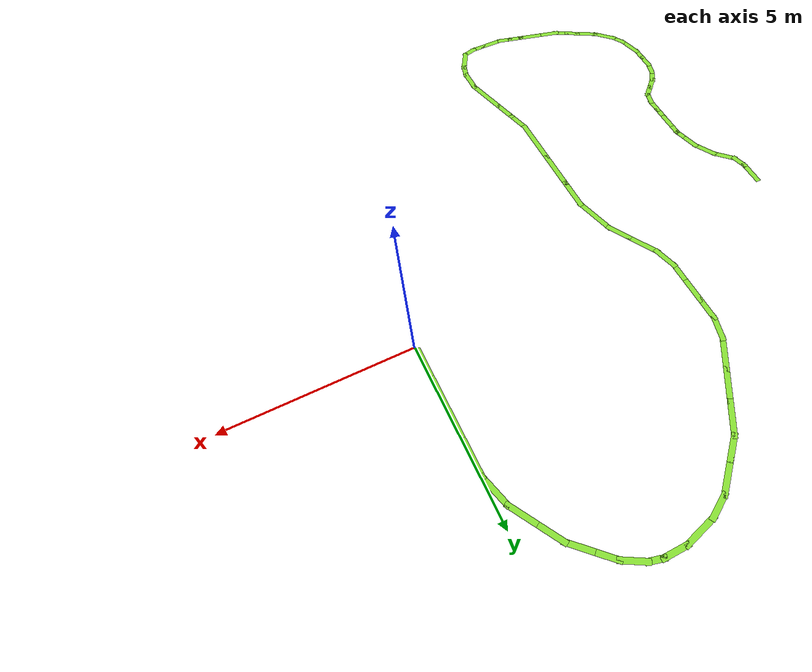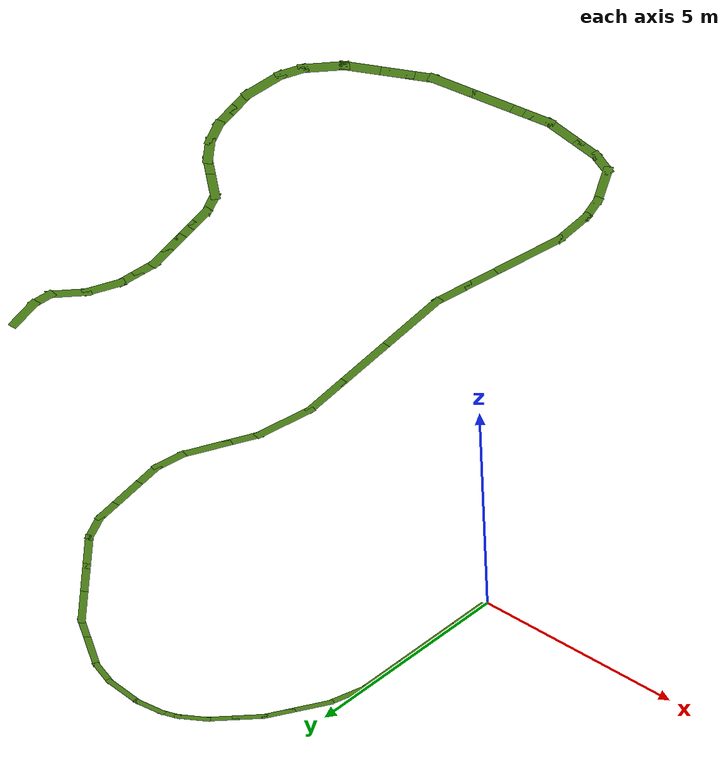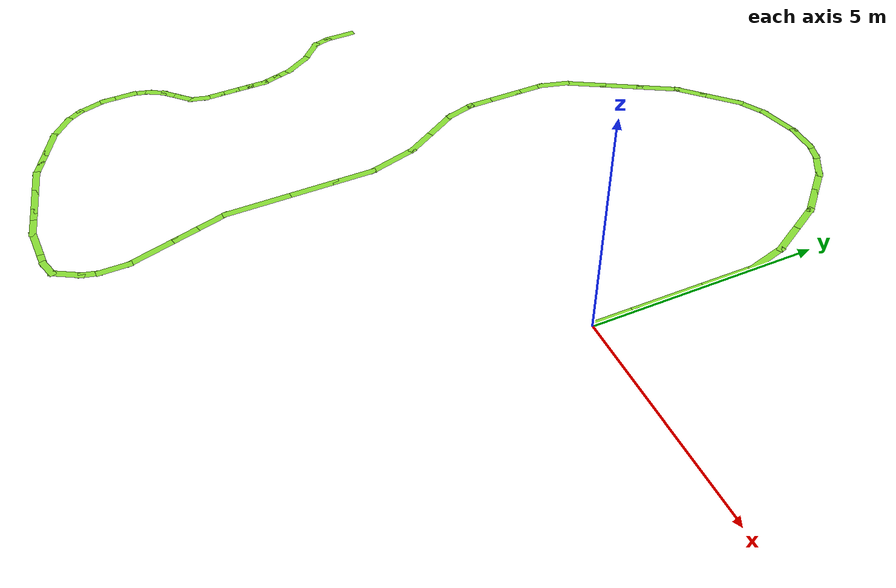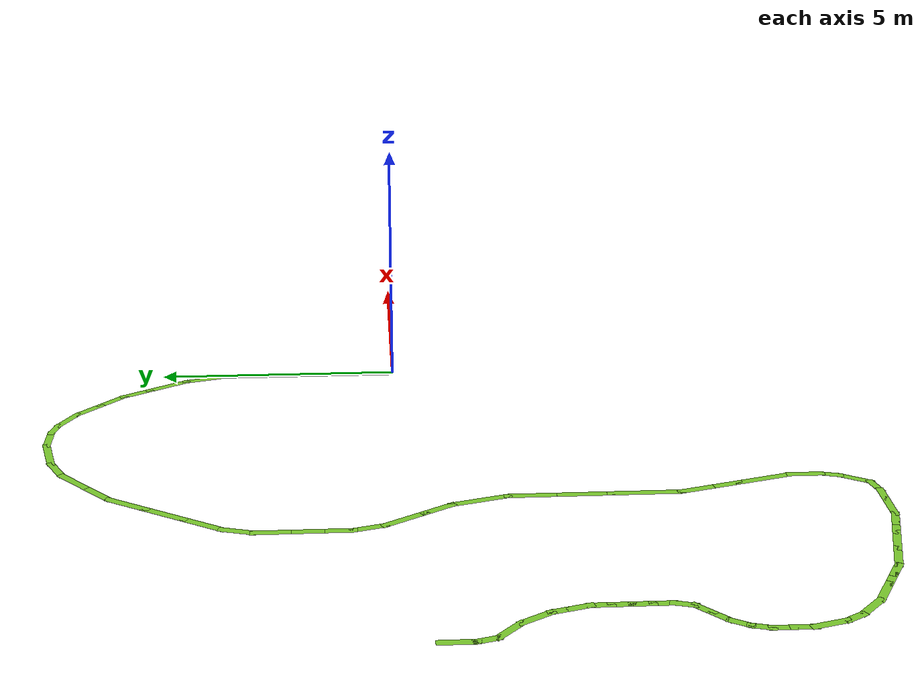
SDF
<?xml version='1.0'?>
<sdf version='1.6'>
  <model name='path_diamond'>
    <pose frame=''>-5.45527 -1.05979 0 0 -0 0</pose>
    <link name='Wall_11'>
      <collision name='Wall_11_Collision'>
        <geometry>
          <box>
            <size>0.75 0.15 0.0</size>
          </box>
        </geometry>
        <pose frame=''>0 0 0 0 -0 0</pose>
      </collision>
      <visual name='Wall_11_Visual'>
        <pose frame=''>0 0 0 0 -0 0</pose>
        <geometry>
          <box>
            <size>0.75 0.15 0.0</size>
          </box>
        </geometry>
        <material>
          <script>
            <uri>file://media/materials/scripts/gazebo.material</uri>
            <name>Gazebo/Grey</name>
          </script>
          <ambient>0.541176 0.886275 0.203922 1</ambient>
        </material>
        <meta>
          <layer>0</layer>
        </meta>
      </visual>
      <pose frame=''>4.61819 6.55155 0 0 -0 2.0944</pose>
    </link>
    <link name='Wall_12'>
      <collision name='Wall_12_Collision'>
        <geometry>
          <box>
            <size>0.75 0.15 0.0</size>
          </box>
        </geometry>
        <pose frame=''>0 0 0 0 -0 0</pose>
      </collision>
      <visual name='Wall_12_Visual'>
        <pose frame=''>0 0 0 0 -0 0</pose>
        <geometry>
          <box>
            <size>0.75 0.15 0.0</size>
          </box>
        </geometry>
        <material>
          <script>
            <uri>file://media/materials/scripts/gazebo.material</uri>
            <name>Gazebo/Grey</name>
          </script>
          <ambient>0.541176 0.886275 0.203922 1</ambient>
        </material>
        <meta>
          <layer>0</layer>
        </meta>
      </visual>
      <pose frame=''>4.25606 7.02349 0 0 -0 2.35619</pose>
    </link>
    <link name='Wall_17'>
      <collision name='Wall_17_Collision'>
        <geometry>
          <box>
            <size>0.75 0.15 0.0</size>
          </box>
        </geometry>
        <pose frame=''>0 0 0 0 -0 0</pose>
      </collision>
      <visual name='Wall_17_Visual'>
        <pose frame=''>0 0 0 0 -0 0</pose>
        <geometry>
          <box>
            <size>0.75 0.15 0.0</size>
          </box>
        </geometry>
        <material>
          <script>
            <uri>file://media/materials/scripts/gazebo.material</uri>
            <name>Gazebo/Grey</name>
          </script>
          <ambient>0.541176 0.886275 0.203922 1</ambient>
        </material>
        <meta>
          <layer>0</layer>
        </meta>
      </visual>
      <pose frame=''>3.83179 7.44775 0 0 -0 2.35619</pose>
    </link>
    <link name='Wall_18'>
      <collision name='Wall_18_Collision'>
        <geometry>
          <box>
            <size>0.75 0.15 0.0</size>
          </box>
        </geometry>
        <pose frame=''>0 0 0 0 -0 0</pose>
      </collision>
      <visual name='Wall_18_Visual'>
        <pose frame=''>0 0 0 0 -0 0</pose>
        <geometry>
          <box>
            <size>0.75 0.15 0.0</size>
          </box>
        </geometry>
        <material>
          <script>
            <uri>file://media/materials/scripts/gazebo.material</uri>
            <name>Gazebo/Grey</name>
          </script>
          <ambient>0.541176 0.886275 0.203922 1</ambient>
        </material>
        <meta>
          <layer>0</layer>
        </meta>
      </visual>
      <pose frame=''>3.35985 7.80988 0 0 -0 2.61799</pose>
    </link>
    <link name='Wall_19'>
      <collision name='Wall_19_Collision'>
        <geometry>
          <box>
            <size>0.5 0.15 0.0</size>
          </box>
        </geometry>
        <pose frame=''>0 0 0 0 -0 0</pose>
      </collision>
      <visual name='Wall_19_Visual'>
        <pose frame=''>0 0 0 0 -0 0</pose>
        <geometry>
          <box>
            <size>0.5 0.15 0.0</size>
          </box>
        </geometry>
        <material>
          <script>
            <uri>file://media/materials/scripts/gazebo.material</uri>
            <name>Gazebo/Grey</name>
          </script>
          <ambient>0.541176 0.886275 0.203922 1</ambient>
        </material>
        <meta>
          <layer>0</layer>
        </meta>
      </visual>
      <pose frame=''>2.93101 8.00517 0 0 -0 2.87979</pose>
    </link>
    <link name='Wall_20'>
      <collision name='Wall_20_Collision'>
        <geometry>
          <box>
            <size>0.75 0.15 0.0</size>
          </box>
        </geometry>
        <pose frame=''>0 0 0 0 -0 0</pose>
      </collision>
      <visual name='Wall_20_Visual'>
        <pose frame=''>0 0 0 0 -0 0</pose>
        <geometry>
          <box>
            <size>0.75 0.15 0.0</size>
          </box>
        </geometry>
        <material>
          <script>
            <uri>file://media/materials/scripts/gazebo.material</uri>
            <name>Gazebo/Grey</name>
          </script>
          <ambient>0.541176 0.886275 0.203922 1</ambient>
        </material>
        <meta>
          <layer>0</layer>
        </meta>
      </visual>
      <pose frame=''>2.46197 8.05047 0 0 -0 3.14159</pose>
    </link>
    <link name='Wall_21'>
      <collision name='Wall_21_Collision'>
        <geometry>
          <box>
            <size>1 0.15 0.0</size>
          </box>
        </geometry>
        <pose frame=''>0 0 0 0 -0 0</pose>
      </collision>
      <visual name='Wall_21_Visual'>
        <pose frame=''>0 0 0 0 -0 0</pose>
        <geometry>
          <box>
            <size>1 0.15 0.0</size>
          </box>
        </geometry>
        <material>
          <script>
            <uri>file://media/materials/scripts/gazebo.material</uri>
            <name>Gazebo/Grey</name>
          </script>
          <ambient>0.541176 0.886275 0.203922 1</ambient>
        </material>
        <meta>
          <layer>0</layer>
        </meta>
      </visual>
      <pose frame=''>1.75145 7.94047 0 0 -0 -2.87979</pose>
    </link>
    <link name='Wall_22'>
      <collision name='Wall_22_Collision'>
        <geometry>
          <box>
            <size>0.75 0.15 0.0</size>
          </box>
        </geometry>
        <pose frame=''>0 0 0 0 -0 0</pose>
      </collision>
      <visual name='Wall_22_Visual'>
        <pose frame=''>0 0 0 0 -0 0</pose>
        <geometry>
          <box>
            <size>0.75 0.15 0.0</size>
          </box>
        </geometry>
        <material>
          <script>
            <uri>file://media/materials/scripts/gazebo.material</uri>
            <name>Gazebo/Grey</name>
          </script>
          <ambient>0.541176 0.886275 0.203922 1</ambient>
        </material>
        <meta>
          <layer>0</layer>
        </meta>
      </visual>
      <pose frame=''>1.08113 7.68047 0 0 -0 -2.61799</pose>
    </link>
    <link name='Wall_25'>
      <collision name='Wall_25_Collision'>
        <geometry>
          <box>
            <size>1 0.15 0.0</size>
          </box>
        </geometry>
        <pose frame=''>0 0 0 0 -0 0</pose>
      </collision>
      <visual name='Wall_25_Visual'>
        <pose frame=''>0 0 0 0 -0 0</pose>
        <geometry>
          <box>
            <size>1 0.15 0.0</size>
          </box>
        </geometry>
        <material>
          <script>
            <uri>file://media/materials/scripts/gazebo.material</uri>
            <name>Gazebo/Grey</name>
          </script>
          <ambient>0.541176 0.886275 0.203922 1</ambient>
        </material>
        <meta>
          <layer>0</layer>
        </meta>
      </visual>
      <pose frame=''>0.520799 7.22995 0 0 -0 -2.35619</pose>
    </link>
    <link name='Wall_26'>
      <collision name='Wall_26_Collision'>
        <geometry>
          <box>
            <size>0.75 0.15 0.0</size>
          </box>
        </geometry>
        <pose frame=''>0 0 0 0 -0 0</pose>
      </collision>
      <visual name='Wall_26_Visual'>
        <pose frame=''>0 0 0 0 -0 0</pose>
        <geometry>
          <box>
            <size>0.75 0.15 0.0</size>
          </box>
        </geometry>
        <material>
          <script>
            <uri>file://media/materials/scripts/gazebo.material</uri>
            <name>Gazebo/Grey</name>
          </script>
          <ambient>0.541176 0.886275 0.203922 1</ambient>
        </material>
        <meta>
          <layer>0</layer>
        </meta>
      </visual>
      <pose frame=''>0.008146 6.7173 0 0 -0 -2.35619</pose>
    </link>
    <link name='Wall_27'>
      <collision name='Wall_27_Collision'>
        <geometry>
          <box>
            <size>1 0.15 0.0</size>
          </box>
        </geometry>
        <pose frame=''>0 0 0 0 -0 0</pose>
      </collision>
      <visual name='Wall_27_Visual'>
        <pose frame=''>0 0 0 0 -0 0</pose>
        <geometry>
          <box>
            <size>1 0.15 0.0</size>
          </box>
        </geometry>
        <material>
          <script>
            <uri>file://media/materials/scripts/gazebo.material</uri>
            <name>Gazebo/Grey</name>
          </script>
          <ambient>0.541176 0.886275 0.203922 1</ambient>
        </material>
        <meta>
          <layer>0</layer>
        </meta>
      </visual>
      <pose frame=''>-0.416486 6.13711 0 0 -0 -2.0944</pose>
    </link>
    <link name='Wall_28'>
      <collision name='Wall_28_Collision'>
        <geometry>
          <box>
            <size>1 0.15 0.0</size>
          </box>
        </geometry>
        <pose frame=''>0 0 0 0 -0 0</pose>
      </collision>
      <visual name='Wall_28_Visual'>
        <pose frame=''>0 0 0 0 -0 0</pose>
        <geometry>
          <box>
            <size>1 0.15 0.0</size>
          </box>
        </geometry>
        <material>
          <script>
            <uri>file://media/materials/scripts/gazebo.material</uri>
            <name>Gazebo/Grey</name>
          </script>
          <ambient>0.541176 0.886275 0.203922 1</ambient>
        </material>
        <meta>
          <layer>0</layer>
        </meta>
      </visual>
      <pose frame=''>-0.841486 5.40099 0 0 -0 -2.0944</pose>
    </link>
    <link name='Wall_29'>
      <collision name='Wall_29_Collision'>
        <geometry>
          <box>
            <size>1 0.15 0.0</size>
          </box>
        </geometry>
        <pose frame=''>0 0 0 0 -0 0</pose>
      </collision>
      <visual name='Wall_29_Visual'>
        <pose frame=''>0 0 0 0 -0 0</pose>
        <geometry>
          <box>
            <size>1 0.15 0.0</size>
          </box>
        </geometry>
        <material>
          <script>
            <uri>file://media/materials/scripts/gazebo.material</uri>
            <name>Gazebo/Grey</name>
          </script>
          <ambient>0.541176 0.886275 0.203922 1</ambient>
        </material>
        <meta>
          <layer>0</layer>
        </meta>
      </visual>
      <pose frame=''>-1.26649 4.66486 0 0 -0 -2.0944</pose>
    </link>
    <link name='Wall_30'>
      <collision name='Wall_30_Collision'>
        <geometry>
          <box>
            <size>0.75 0.15 0.0</size>
          </box>
        </geometry>
        <pose frame=''>0 0 0 0 -0 0</pose>
      </collision>
      <visual name='Wall_30_Visual'>
        <pose frame=''>0 0 0 0 -0 0</pose>
        <geometry>
          <box>
            <size>0.75 0.15 0.0</size>
          </box>
        </geometry>
        <material>
          <script>
            <uri>file://media/materials/scripts/gazebo.material</uri>
            <name>Gazebo/Grey</name>
          </script>
          <ambient>0.541176 0.886275 0.203922 1</ambient>
        </material>
        <meta>
          <layer>0</layer>
        </meta>
      </visual>
      <pose frame=''>-1.55663 4.00702 0 0 -0 -1.8326</pose>
    </link>
    <link name='Wall_31'>
      <collision name='Wall_31_Collision'>
        <geometry>
          <box>
            <size>0.75 0.15 0.0</size>
          </box>
        </geometry>
        <pose frame=''>0 0 0 0 -0 0</pose>
      </collision>
      <visual name='Wall_31_Visual'>
        <pose frame=''>0 0 0 0 -0 0</pose>
        <geometry>
          <box>
            <size>0.75 0.15 0.0</size>
          </box>
        </geometry>
        <material>
          <script>
            <uri>file://media/materials/scripts/gazebo.material</uri>
            <name>Gazebo/Grey</name>
          </script>
          <ambient>0.541176 0.886275 0.203922 1</ambient>
        </material>
        <meta>
          <layer>0</layer>
        </meta>
      </visual>
      <pose frame=''>-1.63428 3.41725 0 0 -0 -1.5708</pose>
    </link>
    <link name='Wall_32'>
      <collision name='Wall_32_Collision'>
        <geometry>
          <box>
            <size>0.75 0.15 0.0</size>
          </box>
        </geometry>
        <pose frame=''>0 0 0 0 -0 0</pose>
      </collision>
      <visual name='Wall_32_Visual'>
        <pose frame=''>0 0 0 0 -0 0</pose>
        <geometry>
          <box>
            <size>0.75 0.15 0.0</size>
          </box>
        </geometry>
        <material>
          <script>
            <uri>file://media/materials/scripts/gazebo.material</uri>
            <name>Gazebo/Grey</name>
          </script>
          <ambient>0.541176 0.886275 0.203922 1</ambient>
        </material>
        <meta>
          <layer>0</layer>
        </meta>
      </visual>
      <pose frame=''>-1.63428 2.81725 0 0 -0 -1.5708</pose>
    </link>
    <link name='Wall_33'>
      <collision name='Wall_33_Collision'>
        <geometry>
          <box>
            <size>0.75 0.15 0.0</size>
          </box>
        </geometry>
        <pose frame=''>0 0 0 0 -0 0</pose>
      </collision>
      <visual name='Wall_33_Visual'>
        <pose frame=''>0 0 0 0 -0 0</pose>
        <geometry>
          <box>
            <size>0.75 0.15 0.0</size>
          </box>
        </geometry>
        <material>
          <script>
            <uri>file://media/materials/scripts/gazebo.material</uri>
            <name>Gazebo/Grey</name>
          </script>
          <ambient>0.541176 0.886275 0.203922 1</ambient>
        </material>
        <meta>
          <layer>0</layer>
        </meta>
      </visual>
      <pose frame=''>-1.63428 2.21725 0 0 -0 -1.5708</pose>
    </link>
    <link name='Wall_34'>
      <collision name='Wall_34_Collision'>
        <geometry>
          <box>
            <size>0.75 0.15 0.0</size>
          </box>
        </geometry>
        <pose frame=''>0 0 0 0 -0 0</pose>
      </collision>
      <visual name='Wall_34_Visual'>
        <pose frame=''>0 0 0 0 -0 0</pose>
        <geometry>
          <box>
            <size>0.75 0.15 0.0</size>
          </box>
        </geometry>
        <material>
          <script>
            <uri>file://media/materials/scripts/gazebo.material</uri>
            <name>Gazebo/Grey</name>
          </script>
          <ambient>0.541176 0.886275 0.203922 1</ambient>
        </material>
        <meta>
          <layer>0</layer>
        </meta>
      </visual>
      <pose frame=''>-1.55663 1.62747 0 0 -0 -1.309</pose>
    </link>
    <link name='Wall_35'>
      <collision name='Wall_35_Collision'>
        <geometry>
          <box>
            <size>1 0.15 0.0</size>
          </box>
        </geometry>
        <pose frame=''>0 0 0 0 -0 0</pose>
      </collision>
      <visual name='Wall_35_Visual'>
        <pose frame=''>0 0 0 0 -0 0</pose>
        <geometry>
          <box>
            <size>1 0.15 0.0</size>
          </box>
        </geometry>
        <material>
          <script>
            <uri>file://media/materials/scripts/gazebo.material</uri>
            <name>Gazebo/Grey</name>
          </script>
          <ambient>0.541176 0.886275 0.203922 1</ambient>
        </material>
        <meta>
          <layer>0</layer>
        </meta>
      </visual>
      <pose frame=''>-1.26649 0.969631 0 0 -0 -1.0472</pose>
    </link>
    <link name='Wall_36'>
      <collision name='Wall_36_Collision'>
        <geometry>
          <box>
            <size>0.75 0.15 0.0</size>
          </box>
        </geometry>
        <pose frame=''>0 0 0 0 -0 0</pose>
      </collision>
      <visual name='Wall_36_Visual'>
        <pose frame=''>0 0 0 0 -0 0</pose>
        <geometry>
          <box>
            <size>0.75 0.15 0.0</size>
          </box>
        </geometry>
        <material>
          <script>
            <uri>file://media/materials/scripts/gazebo.material</uri>
            <name>Gazebo/Grey</name>
          </script>
          <ambient>0.541176 0.886275 0.203922 1</ambient>
        </material>
        <meta>
          <layer>0</layer>
        </meta>
      </visual>
      <pose frame=''>-0.903986 0.341763 0 0 -0 -1.0472</pose>
    </link>
    <link name='Wall_37'>
      <collision name='Wall_37_Collision'>
        <geometry>
          <box>
            <size>1.25 0.15 0.0</size>
          </box>
        </geometry>
        <pose frame=''>0 0 0 0 -0 0</pose>
      </collision>
      <visual name='Wall_37_Visual'>
        <pose frame=''>0 0 0 0 -0 0</pose>
        <geometry>
          <box>
            <size>1.25 0.15 0.0</size>
          </box>
        </geometry>
        <material>
          <script>
            <uri>file://media/materials/scripts/gazebo.material</uri>
            <name>Gazebo/Grey</name>
          </script>
          <ambient>0.541176 0.886275 0.203922 1</ambient>
        </material>
        <meta>
          <layer>0</layer>
        </meta>
      </visual>
      <pose frame=''>-0.611636 -0.449304 0 0 -0 -1.309</pose>
    </link>
    <link name='Wall_38'>
      <collision name='Wall_38_Collision'>
        <geometry>
          <box>
            <size>1 0.15 0.0</size>
          </box>
        </geometry>
        <pose frame=''>0 0 0 0 -0 0</pose>
      </collision>
      <visual name='Wall_38_Visual'>
        <pose frame=''>0 0 0 0 -0 0</pose>
        <geometry>
          <box>
            <size>1 0.15 0.0</size>
          </box>
        </geometry>
        <material>
          <script>
            <uri>file://media/materials/scripts/gazebo.material</uri>
            <name>Gazebo/Grey</name>
          </script>
          <ambient>0.541176 0.886275 0.203922 1</ambient>
        </material>
        <meta>
          <layer>0</layer>
        </meta>
      </visual>
      <pose frame=''>-0.469285 -1.40556 0 0 -0 -1.5708</pose>
    </link>
    <link name='Wall_39'>
      <collision name='Wall_39_Collision'>
        <geometry>
          <box>
            <size>1.25 0.15 0.0</size>
          </box>
        </geometry>
        <pose frame=''>0 0 0 0 -0 0</pose>
      </collision>
      <visual name='Wall_39_Visual'>
        <pose frame=''>0 0 0 0 -0 0</pose>
        <geometry>
          <box>
            <size>1.25 0.15 0.0</size>
          </box>
        </geometry>
        <material>
          <script>
            <uri>file://media/materials/scripts/gazebo.material</uri>
            <name>Gazebo/Grey</name>
          </script>
          <ambient>0.541176 0.886275 0.203922 1</ambient>
        </material>
        <meta>
          <layer>0</layer>
        </meta>
      </visual>
      <pose frame=''>-0.469285 -2.38056 0 0 -0 -1.5708</pose>
    </link>
    <link name='Wall_4'>
      <collision name='Wall_4_Collision'>
        <geometry>
          <box>
            <size>1 0.15 0.0</size>
          </box>
        </geometry>
        <pose frame=''>0 0 0 0 -0 0</pose>
      </collision>
      <visual name='Wall_4_Visual'>
        <pose frame=''>0 0 0 0 -0 0</pose>
        <geometry>
          <box>
            <size>1 0.15 0.0</size>
          </box>
        </geometry>
        <material>
          <script>
            <uri>file://media/materials/scripts/gazebo.material</uri>
            <name>Gazebo/Grey</name>
          </script>
          <ambient>0.541176 0.886275 0.203922 1</ambient>
        </material>
        <meta>
          <layer>0</layer>
        </meta>
      </visual>
      <pose frame=''>5.41319 1.60958 0 0 -0 1.5708</pose>
    </link>
    <link name='Wall_40'>
      <collision name='Wall_40_Collision'>
        <geometry>
          <box>
            <size>1.5 0.15 0.0</size>
          </box>
        </geometry>
        <pose frame=''>0 0 0 0 -0 0</pose>
      </collision>
      <visual name='Wall_40_Visual'>
        <pose frame=''>0 0 0 0 -0 0</pose>
        <geometry>
          <box>
            <size>1.5 0.15 0.0</size>
          </box>
        </geometry>
        <material>
          <script>
            <uri>file://media/materials/scripts/gazebo.material</uri>
            <name>Gazebo/Grey</name>
          </script>
          <ambient>0.541176 0.886275 0.203922 1</ambient>
        </material>
        <meta>
          <layer>0</layer>
        </meta>
      </visual>
      <pose frame=''>-0.469285 -3.60556 0 0 -0 -1.5708</pose>
    </link>
    <link name='Wall_41'>
      <collision name='Wall_41_Collision'>
        <geometry>
          <box>
            <size>0.75 0.15 0.0</size>
          </box>
        </geometry>
        <pose frame=''>0 0 0 0 -0 0</pose>
      </collision>
      <visual name='Wall_41_Visual'>
        <pose frame=''>0 0 0 0 -0 0</pose>
        <geometry>
          <box>
            <size>0.75 0.15 0.0</size>
          </box>
        </geometry>
        <material>
          <script>
            <uri>file://media/materials/scripts/gazebo.material</uri>
            <name>Gazebo/Grey</name>
          </script>
          <ambient>0.541176 0.886275 0.203922 1</ambient>
        </material>
        <meta>
          <layer>0</layer>
        </meta>
      </visual>
      <pose frame=''>-0.391639 -4.57034 0 0 -0 -1.309</pose>
    </link>
    <link name='Wall_42'>
      <collision name='Wall_42_Collision'>
        <geometry>
          <box>
            <size>0.75 0.15 0.0</size>
          </box>
        </geometry>
        <pose frame=''>0 0 0 0 -0 0</pose>
      </collision>
      <visual name='Wall_42_Visual'>
        <pose frame=''>0 0 0 0 -0 0</pose>
        <geometry>
          <box>
            <size>0.75 0.15 0.0</size>
          </box>
        </geometry>
        <material>
          <script>
            <uri>file://media/materials/scripts/gazebo.material</uri>
            <name>Gazebo/Grey</name>
          </script>
          <ambient>0.541176 0.886275 0.203922 1</ambient>
        </material>
        <meta>
          <layer>0</layer>
        </meta>
      </visual>
      <pose frame=''>-0.236348 -5.1499 0 0 -0 -1.309</pose>
    </link>
    <link name='Wall_43'>
      <collision name='Wall_43_Collision'>
        <geometry>
          <box>
            <size>1.25 0.15 0.0</size>
          </box>
        </geometry>
        <pose frame=''>0 0 0 0 -0 0</pose>
      </collision>
      <visual name='Wall_43_Visual'>
        <pose frame=''>0 0 0 0 -0 0</pose>
        <geometry>
          <box>
            <size>1.25 0.15 0.0</size>
          </box>
        </geometry>
        <material>
          <script>
            <uri>file://media/materials/scripts/gazebo.material</uri>
            <name>Gazebo/Grey</name>
          </script>
          <ambient>0.541176 0.886275 0.203922 1</ambient>
        </material>
        <meta>
          <layer>0</layer>
        </meta>
      </visual>
      <pose frame=''>-0.016352 -5.97093 0 0 -0 -1.309</pose>
    </link>
    <link name='Wall_44'>
      <collision name='Wall_44_Collision'>
        <geometry>
          <box>
            <size>0.75 0.15 0.0</size>
          </box>
        </geometry>
        <pose frame=''>0 0 0 0 -0 0</pose>
      </collision>
      <visual name='Wall_44_Visual'>
        <pose frame=''>0 0 0 0 -0 0</pose>
        <geometry>
          <box>
            <size>0.75 0.15 0.0</size>
          </box>
        </geometry>
        <material>
          <script>
            <uri>file://media/materials/scripts/gazebo.material</uri>
            <name>Gazebo/Grey</name>
          </script>
          <ambient>0.541176 0.886275 0.203922 1</ambient>
        </material>
        <meta>
          <layer>0</layer>
        </meta>
      </visual>
      <pose frame=''>0.125999 -6.80219 0 0 -0 -1.5708</pose>
    </link>
    <link name='Wall_45'>
      <collision name='Wall_45_Collision'>
        <geometry>
          <box>
            <size>0.5 0.15 0.0</size>
          </box>
        </geometry>
        <pose frame=''>0 0 0 0 -0 0</pose>
      </collision>
      <visual name='Wall_45_Visual'>
        <pose frame=''>0 0 0 0 -0 0</pose>
        <geometry>
          <box>
            <size>0.5 0.15 0.0</size>
          </box>
        </geometry>
        <material>
          <script>
            <uri>file://media/materials/scripts/gazebo.material</uri>
            <name>Gazebo/Grey</name>
          </script>
          <ambient>0.541176 0.886275 0.203922 1</ambient>
        </material>
        <meta>
          <layer>0</layer>
        </meta>
      </visual>
      <pose frame=''>0.080706 -7.27123 0 0 -0 -1.8326</pose>
    </link>
    <link name='Wall_46'>
      <collision name='Wall_46_Collision'>
        <geometry>
          <box>
            <size>0.75 0.15 0.0</size>
          </box>
        </geometry>
        <pose frame=''>0 0 0 0 -0 0</pose>
      </collision>
      <visual name='Wall_46_Visual'>
        <pose frame=''>0 0 0 0 -0 0</pose>
        <geometry>
          <box>
            <size>0.75 0.15 0.0</size>
          </box>
        </geometry>
        <material>
          <script>
            <uri>file://media/materials/scripts/gazebo.material</uri>
            <name>Gazebo/Grey</name>
          </script>
          <ambient>0.541176 0.886275 0.203922 1</ambient>
        </material>
        <meta>
          <layer>0</layer>
        </meta>
      </visual>
      <pose frame=''>-0.114588 -7.70007 0 0 -0 -2.0944</pose>
    </link>
    <link name='Wall_47'>
      <collision name='Wall_47_Collision'>
        <geometry>
          <box>
            <size>0.5 0.15 0.0</size>
          </box>
        </geometry>
        <pose frame=''>0 0 0 0 -0 0</pose>
      </collision>
      <visual name='Wall_47_Visual'>
        <pose frame=''>0 0 0 0 -0 0</pose>
        <geometry>
          <box>
            <size>0.5 0.15 0.0</size>
          </box>
        </geometry>
        <material>
          <script>
            <uri>file://media/materials/scripts/gazebo.material</uri>
            <name>Gazebo/Grey</name>
          </script>
          <ambient>0.541176 0.886275 0.203922 1</ambient>
        </material>
        <meta>
          <layer>0</layer>
        </meta>
      </visual>
      <pose frame=''>-0.433625 -8.00518 0 0 -0 -2.87979</pose>
    </link>
    <link name='Wall_48'>
      <collision name='Wall_48_Collision'>
        <geometry>
          <box>
            <size>0.5 0.15 0.0</size>
          </box>
        </geometry>
        <pose frame=''>0 0 0 0 -0 0</pose>
      </collision>
      <visual name='Wall_48_Visual'>
        <pose frame=''>0 0 0 0 -0 0</pose>
        <geometry>
          <box>
            <size>0.5 0.15 0.0</size>
          </box>
        </geometry>
        <material>
          <script>
            <uri>file://media/materials/scripts/gazebo.material</uri>
            <name>Gazebo/Grey</name>
          </script>
          <ambient>0.541176 0.886275 0.203922 1</ambient>
        </material>
        <meta>
          <layer>0</layer>
        </meta>
      </visual>
      <pose frame=''>-0.777662 -8.05047 0 0 -0 3.14159</pose>
    </link>
    <link name='Wall_49'>
      <collision name='Wall_49_Collision'>
        <geometry>
          <box>
            <size>0.75 0.15 0.0</size>
          </box>
        </geometry>
        <pose frame=''>0 0 0 0 -0 0</pose>
      </collision>
      <visual name='Wall_49_Visual'>
        <pose frame=''>0 0 0 0 -0 0</pose>
        <geometry>
          <box>
            <size>0.75 0.15 0.0</size>
          </box>
        </geometry>
        <material>
          <script>
            <uri>file://media/materials/scripts/gazebo.material</uri>
            <name>Gazebo/Grey</name>
          </script>
          <ambient>0.541176 0.886275 0.203922 1</ambient>
        </material>
        <meta>
          <layer>0</layer>
        </meta>
      </visual>
      <pose frame=''>-1.25266 -8.05047 0 0 -0 3.14159</pose>
    </link>
    <link name='Wall_5'>
      <collision name='Wall_5_Collision'>
        <geometry>
          <box>
            <size>1.75 0.15 0.0</size>
          </box>
        </geometry>
        <pose frame=''>0 0 0 0 -0 0</pose>
      </collision>
      <visual name='Wall_5_Visual'>
        <pose frame=''>0 0 0 0 -0 0</pose>
        <geometry>
          <box>
            <size>1.75 0.15 0.0</size>
          </box>
        </geometry>
        <material>
          <script>
            <uri>file://media/materials/scripts/gazebo.material</uri>
            <name>Gazebo/Grey</name>
          </script>
          <ambient>0.541176 0.886275 0.203922 1</ambient>
        </material>
        <meta>
          <layer>0</layer>
        </meta>
      </visual>
      <pose frame=''>5.41319 2.83458 0 0 -0 1.5708</pose>
    </link>
    <link name='Wall_50'>
      <collision name='Wall_50_Collision'>
        <geometry>
          <box>
            <size>0.5 0.15 0.0</size>
          </box>
        </geometry>
        <pose frame=''>0 0 0 0 -0 0</pose>
      </collision>
      <visual name='Wall_50_Visual'>
        <pose frame=''>0 0 0 0 -0 0</pose>
        <geometry>
          <box>
            <size>0.5 0.15 0.0</size>
          </box>
        </geometry>
        <material>
          <script>
            <uri>file://media/materials/scripts/gazebo.material</uri>
            <name>Gazebo/Grey</name>
          </script>
          <ambient>0.541176 0.886275 0.203922 1</ambient>
        </material>
        <meta>
          <layer>0</layer>
        </meta>
      </visual>
      <pose frame=''>-1.7217 -8.00518 0 0 -0 2.87979</pose>
    </link>
    <link name='Wall_51'>
      <collision name='Wall_51_Collision'>
        <geometry>
          <box>
            <size>0.5 0.15 0.0</size>
          </box>
        </geometry>
        <pose frame=''>0 0 0 0 -0 0</pose>
      </collision>
      <visual name='Wall_51_Visual'>
        <pose frame=''>0 0 0 0 -0 0</pose>
        <geometry>
          <box>
            <size>0.5 0.15 0.0</size>
          </box>
        </geometry>
        <material>
          <script>
            <uri>file://media/materials/scripts/gazebo.material</uri>
            <name>Gazebo/Grey</name>
          </script>
          <ambient>0.541176 0.886275 0.203922 1</ambient>
        </material>
        <meta>
          <layer>0</layer>
        </meta>
      </visual>
      <pose frame=''>-2.05977 -7.91459 0 0 -0 2.87979</pose>
    </link>
    <link name='Wall_52'>
      <collision name='Wall_52_Collision'>
        <geometry>
          <box>
            <size>0.75 0.15 0.0</size>
          </box>
        </geometry>
        <pose frame=''>0 0 0 0 -0 0</pose>
      </collision>
      <visual name='Wall_52_Visual'>
        <pose frame=''>0 0 0 0 -0 0</pose>
        <geometry>
          <box>
            <size>0.75 0.15 0.0</size>
          </box>
        </geometry>
        <material>
          <script>
            <uri>file://media/materials/scripts/gazebo.material</uri>
            <name>Gazebo/Grey</name>
          </script>
          <ambient>0.541176 0.886275 0.203922 1</ambient>
        </material>
        <meta>
          <layer>0</layer>
        </meta>
      </visual>
      <pose frame=''>-2.51859 -7.79165 0 0 -0 2.87979</pose>
    </link>
    <link name='Wall_53'>
      <collision name='Wall_53_Collision'>
        <geometry>
          <box>
            <size>0.75 0.15 0.0</size>
          </box>
        </geometry>
        <pose frame=''>0 0 0 0 -0 0</pose>
      </collision>
      <visual name='Wall_53_Visual'>
        <pose frame=''>0 0 0 0 -0 0</pose>
        <geometry>
          <box>
            <size>0.75 0.15 0.0</size>
          </box>
        </geometry>
        <material>
          <script>
            <uri>file://media/materials/scripts/gazebo.material</uri>
            <name>Gazebo/Grey</name>
          </script>
          <ambient>0.541176 0.886275 0.203922 1</ambient>
        </material>
        <meta>
          <layer>0</layer>
        </meta>
      </visual>
      <pose frame=''>-3.09814 -7.63636 0 0 -0 2.87979</pose>
    </link>
    <link name='Wall_54'>
      <collision name='Wall_54_Collision'>
        <geometry>
          <box>
            <size>0.5 0.15 0.0</size>
          </box>
        </geometry>
        <pose frame=''>0 0 0 0 -0 0</pose>
      </collision>
      <visual name='Wall_54_Visual'>
        <pose frame=''>0 0 0 0 -0 0</pose>
        <geometry>
          <box>
            <size>0.5 0.15 0.0</size>
          </box>
        </geometry>
        <material>
          <script>
            <uri>file://media/materials/scripts/gazebo.material</uri>
            <name>Gazebo/Grey</name>
          </script>
          <ambient>0.541176 0.886275 0.203922 1</ambient>
        </material>
        <meta>
          <layer>0</layer>
        </meta>
      </visual>
      <pose frame=''>-3.53947 -7.47121 0 0 -0 2.61799</pose>
    </link>
    <link name='Wall_55'>
      <collision name='Wall_55_Collision'>
        <geometry>
          <box>
            <size>0.5 0.15 0.0</size>
          </box>
        </geometry>
        <pose frame=''>0 0 0 0 -0 0</pose>
      </collision>
      <visual name='Wall_55_Visual'>
        <pose frame=''>0 0 0 0 -0 0</pose>
        <geometry>
          <box>
            <size>0.5 0.15 0.0</size>
          </box>
        </geometry>
        <material>
          <script>
            <uri>file://media/materials/scripts/gazebo.material</uri>
            <name>Gazebo/Grey</name>
          </script>
          <ambient>0.541176 0.886275 0.203922 1</ambient>
        </material>
        <meta>
          <layer>0</layer>
        </meta>
      </visual>
      <pose frame=''>-3.84258 -7.29621 0 0 -0 2.61799</pose>
    </link>
    <link name='Wall_58'>
      <collision name='Wall_58_Collision'>
        <geometry>
          <box>
            <size>0.75 0.15 0.0</size>
          </box>
        </geometry>
        <pose frame=''>0 0 0 0 -0 0</pose>
      </collision>
      <visual name='Wall_58_Visual'>
        <pose frame=''>0 0 0 0 -0 0</pose>
        <geometry>
          <box>
            <size>0.75 0.15 0.0</size>
          </box>
        </geometry>
        <material>
          <script>
            <uri>file://media/materials/scripts/gazebo.material</uri>
            <name>Gazebo/Grey</name>
          </script>
          <ambient>0.541176 0.886275 0.203922 1</ambient>
        </material>
        <meta>
          <layer>0</layer>
        </meta>
      </visual>
      <pose frame=''>-4.25395 -7.05871 0 0 -0 2.61799</pose>
    </link>
    <link name='Wall_59'>
      <collision name='Wall_59_Collision'>
        <geometry>
          <box>
            <size>0.75 0.15 0.0</size>
          </box>
        </geometry>
        <pose frame=''>0 0 0 0 -0 0</pose>
      </collision>
      <visual name='Wall_59_Visual'>
        <pose frame=''>0 0 0 0 -0 0</pose>
        <geometry>
          <box>
            <size>0.75 0.15 0.0</size>
          </box>
        </geometry>
        <material>
          <script>
            <uri>file://media/materials/scripts/gazebo.material</uri>
            <name>Gazebo/Grey</name>
          </script>
          <ambient>0.541176 0.886275 0.203922 1</ambient>
        </material>
        <meta>
          <layer>0</layer>
        </meta>
      </visual>
      <pose frame=''>-4.72589 -6.69658 0 0 -0 2.35619</pose>
    </link>
    <link name='Wall_6'>
      <collision name='Wall_6_Collision'>
        <geometry>
          <box>
            <size>1.25 0.15 0.0</size>
          </box>
        </geometry>
        <pose frame=''>0 0 0 0 -0 0</pose>
      </collision>
      <visual name='Wall_6_Visual'>
        <pose frame=''>0 0 0 0 -0 0</pose>
        <geometry>
          <box>
            <size>1.25 0.15 0.0</size>
          </box>
        </geometry>
        <material>
          <script>
            <uri>file://media/materials/scripts/gazebo.material</uri>
            <name>Gazebo/Grey</name>
          </script>
          <ambient>0.541176 0.886275 0.203922 1</ambient>
        </material>
        <meta>
          <layer>0</layer>
        </meta>
      </visual>
      <pose frame=''>5.41319 4.18458 0 0 -0 1.5708</pose>
    </link>
    <link name='Wall_60'>
      <collision name='Wall_60_Collision'>
        <geometry>
          <box>
            <size>0.5 0.15 0.0</size>
          </box>
        </geometry>
        <pose frame=''>0 0 0 0 -0 0</pose>
      </collision>
      <visual name='Wall_60_Visual'>
        <pose frame=''>0 0 0 0 -0 0</pose>
        <geometry>
          <box>
            <size>0.5 0.15 0.0</size>
          </box>
        </geometry>
        <material>
          <script>
            <uri>file://media/materials/scripts/gazebo.material</uri>
            <name>Gazebo/Grey</name>
          </script>
          <ambient>0.541176 0.886275 0.203922 1</ambient>
        </material>
        <meta>
          <layer>0</layer>
        </meta>
      </visual>
      <pose frame=''>-5.02552 -6.33289 0 0 -0 2.0944</pose>
    </link>
    <link name='Wall_61'>
      <collision name='Wall_61_Collision'>
        <geometry>
          <box>
            <size>0.75 0.15 0.0</size>
          </box>
        </geometry>
        <pose frame=''>0 0 0 0 -0 0</pose>
      </collision>
      <visual name='Wall_61_Visual'>
        <pose frame=''>0 0 0 0 -0 0</pose>
        <geometry>
          <box>
            <size>0.75 0.15 0.0</size>
          </box>
        </geometry>
        <material>
          <script>
            <uri>file://media/materials/scripts/gazebo.material</uri>
            <name>Gazebo/Grey</name>
          </script>
          <ambient>0.541176 0.886275 0.203922 1</ambient>
        </material>
        <meta>
          <layer>0</layer>
        </meta>
      </visual>
      <pose frame=''>-5.19066 -5.89156 0 0 -0 1.8326</pose>
    </link>
    <link name='Wall_62'>
      <collision name='Wall_62_Collision'>
        <geometry>
          <box>
            <size>0.5 0.15 0.0</size>
          </box>
        </geometry>
        <pose frame=''>0 0 0 0 -0 0</pose>
      </collision>
      <visual name='Wall_62_Visual'>
        <pose frame=''>0 0 0 0 -0 0</pose>
        <geometry>
          <box>
            <size>0.5 0.15 0.0</size>
          </box>
        </geometry>
        <material>
          <script>
            <uri>file://media/materials/scripts/gazebo.material</uri>
            <name>Gazebo/Grey</name>
          </script>
          <ambient>0.541176 0.886275 0.203922 1</ambient>
        </material>
        <meta>
          <layer>0</layer>
        </meta>
      </visual>
      <pose frame=''>-5.26831 -5.42678 0 0 -0 1.5708</pose>
    </link>
    <link name='Wall_63'>
      <collision name='Wall_63_Collision'>
        <geometry>
          <box>
            <size>0.5 0.15 0.0</size>
          </box>
        </geometry>
        <pose frame=''>0 0 0 0 -0 0</pose>
      </collision>
      <visual name='Wall_63_Visual'>
        <pose frame=''>0 0 0 0 -0 0</pose>
        <geometry>
          <box>
            <size>0.5 0.15 0.0</size>
          </box>
        </geometry>
        <material>
          <script>
            <uri>file://media/materials/scripts/gazebo.material</uri>
            <name>Gazebo/Grey</name>
          </script>
          <ambient>0.541176 0.886275 0.203922 1</ambient>
        </material>
        <meta>
          <layer>0</layer>
        </meta>
      </visual>
      <pose frame=''>-5.26831 -5.07678 0 0 -0 1.5708</pose>
    </link>
    <link name='Wall_7'>
      <collision name='Wall_7_Collision'>
        <geometry>
          <box>
            <size>1 0.15 0.0</size>
          </box>
        </geometry>
        <pose frame=''>0 0 0 0 -0 0</pose>
      </collision>
      <visual name='Wall_7_Visual'>
        <pose frame=''>0 0 0 0 -0 0</pose>
        <geometry>
          <box>
            <size>1 0.15 0.0</size>
          </box>
        </geometry>
        <material>
          <script>
            <uri>file://media/materials/scripts/gazebo.material</uri>
            <name>Gazebo/Grey</name>
          </script>
          <ambient>0.541176 0.886275 0.203922 1</ambient>
        </material>
        <meta>
          <layer>0</layer>
        </meta>
      </visual>
      <pose frame=''>5.30319 5.1451 0 0 -0 1.8326</pose>
    </link>
    <link name='Wall_72'>
      <collision name='Wall_72_Collision'>
        <geometry>
          <box>
            <size>0.5 0.15 0.0</size>
          </box>
        </geometry>
        <pose frame=''>0 0 0 0 -0 0</pose>
      </collision>
      <visual name='Wall_72_Visual'>
        <pose frame=''>0 0 0 0 -0 0</pose>
        <geometry>
          <box>
            <size>0.5 0.15 0.0</size>
          </box>
        </geometry>
        <material>
          <script>
            <uri>file://media/materials/scripts/gazebo.material</uri>
            <name>Gazebo/Grey</name>
          </script>
          <ambient>0.541176 0.886275 0.203922 1</ambient>
        </material>
        <meta>
          <layer>0</layer>
        </meta>
      </visual>
      <pose frame=''>-5.22302 -4.73275 0 0 -0 1.309</pose>
    </link>
    <link name='Wall_73'>
      <collision name='Wall_73_Collision'>
        <geometry>
          <box>
            <size>0.5 0.15 0.0</size>
          </box>
        </geometry>
        <pose frame=''>0 0 0 0 -0 0</pose>
      </collision>
      <visual name='Wall_73_Visual'>
        <pose frame=''>0 0 0 0 -0 0</pose>
        <geometry>
          <box>
            <size>0.5 0.15 0.0</size>
          </box>
        </geometry>
        <material>
          <script>
            <uri>file://media/materials/scripts/gazebo.material</uri>
            <name>Gazebo/Grey</name>
          </script>
          <ambient>0.541176 0.886275 0.203922 1</ambient>
        </material>
        <meta>
          <layer>0</layer>
        </meta>
      </visual>
      <pose frame=''>-5.09022 -4.41216 0 0 -0 1.0472</pose>
    </link>
    <link name='Wall_74'>
      <collision name='Wall_74_Collision'>
        <geometry>
          <box>
            <size>0.5 0.15 0.0</size>
          </box>
        </geometry>
        <pose frame=''>0 0 0 0 -0 0</pose>
      </collision>
      <visual name='Wall_74_Visual'>
        <pose frame=''>0 0 0 0 -0 0</pose>
        <geometry>
          <box>
            <size>0.5 0.15 0.0</size>
          </box>
        </geometry>
        <material>
          <script>
            <uri>file://media/materials/scripts/gazebo.material</uri>
            <name>Gazebo/Grey</name>
          </script>
          <ambient>0.541176 0.886275 0.203922 1</ambient>
        </material>
        <meta>
          <layer>0</layer>
        </meta>
      </visual>
      <pose frame=''>-4.87898 -4.13686 0 0 -0 0.785398</pose>
    </link>
    <link name='Wall_75'>
      <collision name='Wall_75_Collision'>
        <geometry>
          <box>
            <size>0.5 0.15 0.0</size>
          </box>
        </geometry>
        <pose frame=''>0 0 0 0 -0 0</pose>
      </collision>
      <visual name='Wall_75_Visual'>
        <pose frame=''>0 0 0 0 -0 0</pose>
        <geometry>
          <box>
            <size>0.5 0.15 0.0</size>
          </box>
        </geometry>
        <material>
          <script>
            <uri>file://media/materials/scripts/gazebo.material</uri>
            <name>Gazebo/Grey</name>
          </script>
          <ambient>0.541176 0.886275 0.203922 1</ambient>
        </material>
        <meta>
          <layer>0</layer>
        </meta>
      </visual>
      <pose frame=''>-4.63149 -3.88937 0 0 -0 0.785398</pose>
    </link>
    <link name='Wall_76'>
      <collision name='Wall_76_Collision'>
        <geometry>
          <box>
            <size>0.5 0.15 0.0</size>
          </box>
        </geometry>
        <pose frame=''>0 0 0 0 -0 0</pose>
      </collision>
      <visual name='Wall_76_Visual'>
        <pose frame=''>0 0 0 0 -0 0</pose>
        <geometry>
          <box>
            <size>0.5 0.15 0.0</size>
          </box>
        </geometry>
        <material>
          <script>
            <uri>file://media/materials/scripts/gazebo.material</uri>
            <name>Gazebo/Grey</name>
          </script>
          <ambient>0.541176 0.886275 0.203922 1</ambient>
        </material>
        <meta>
          <layer>0</layer>
        </meta>
      </visual>
      <pose frame=''>-4.46245 -3.59659 0 0 -0 1.309</pose>
    </link>
    <link name='Wall_77'>
      <collision name='Wall_77_Collision'>
        <geometry>
          <box>
            <size>0.5 0.15 0.0</size>
          </box>
        </geometry>
        <pose frame=''>0 0 0 0 -0 0</pose>
      </collision>
      <visual name='Wall_77_Visual'>
        <pose frame=''>0 0 0 0 -0 0</pose>
        <geometry>
          <box>
            <size>0.5 0.15 0.0</size>
          </box>
        </geometry>
        <material>
          <script>
            <uri>file://media/materials/scripts/gazebo.material</uri>
            <name>Gazebo/Grey</name>
          </script>
          <ambient>0.541176 0.886275 0.203922 1</ambient>
        </material>
        <meta>
          <layer>0</layer>
        </meta>
      </visual>
      <pose frame=''>-4.41716 -3.25255 0 0 -0 1.5708</pose>
    </link>
    <link name='Wall_78'>
      <collision name='Wall_78_Collision'>
        <geometry>
          <box>
            <size>0.5 0.15 0.0</size>
          </box>
        </geometry>
        <pose frame=''>0 0 0 0 -0 0</pose>
      </collision>
      <visual name='Wall_78_Visual'>
        <pose frame=''>0 0 0 0 -0 0</pose>
        <geometry>
          <box>
            <size>0.5 0.15 0.0</size>
          </box>
        </geometry>
        <material>
          <script>
            <uri>file://media/materials/scripts/gazebo.material</uri>
            <name>Gazebo/Grey</name>
          </script>
          <ambient>0.541176 0.886275 0.203922 1</ambient>
        </material>
        <meta>
          <layer>0</layer>
        </meta>
      </visual>
      <pose frame=''>-4.41716 -2.90255 0 0 -0 1.5708</pose>
    </link>
    <link name='Wall_79'>
      <collision name='Wall_79_Collision'>
        <geometry>
          <box>
            <size>0.5 0.15 0.0</size>
          </box>
        </geometry>
        <pose frame=''>0 0 0 0 -0 0</pose>
      </collision>
      <visual name='Wall_79_Visual'>
        <pose frame=''>0 0 0 0 -0 0</pose>
        <geometry>
          <box>
            <size>0.5 0.15 0.0</size>
          </box>
        </geometry>
        <material>
          <script>
            <uri>file://media/materials/scripts/gazebo.material</uri>
            <name>Gazebo/Grey</name>
          </script>
          <ambient>0.541176 0.886275 0.203922 1</ambient>
        </material>
        <meta>
          <layer>0</layer>
        </meta>
      </visual>
      <pose frame=''>-4.41716 -2.55255 0 0 -0 1.5708</pose>
    </link>
    <link name='Wall_8'>
      <collision name='Wall_8_Collision'>
        <geometry>
          <box>
            <size>1 0.15 0.0</size>
          </box>
        </geometry>
        <pose frame=''>0 0 0 0 -0 0</pose>
      </collision>
      <visual name='Wall_8_Visual'>
        <pose frame=''>0 0 0 0 -0 0</pose>
        <geometry>
          <box>
            <size>1 0.15 0.0</size>
          </box>
        </geometry>
        <material>
          <script>
            <uri>file://media/materials/scripts/gazebo.material</uri>
            <name>Gazebo/Grey</name>
          </script>
          <ambient>0.541176 0.886275 0.203922 1</ambient>
        </material>
        <meta>
          <layer>0</layer>
        </meta>
      </visual>
      <pose frame=''>4.98069 5.92368 0 0 -0 2.0944</pose>
    </link>
    <link name='Wall_80'>
      <collision name='Wall_80_Collision'>
        <geometry>
          <box>
            <size>0.5 0.15 0.0</size>
          </box>
        </geometry>
        <pose frame=''>0 0 0 0 -0 0</pose>
      </collision>
      <visual name='Wall_80_Visual'>
        <pose frame=''>0 0 0 0 -0 0</pose>
        <geometry>
          <box>
            <size>0.5 0.15 0.0</size>
          </box>
        </geometry>
        <material>
          <script>
            <uri>file://media/materials/scripts/gazebo.material</uri>
            <name>Gazebo/Grey</name>
          </script>
          <ambient>0.541176 0.886275 0.203922 1</ambient>
        </material>
        <meta>
          <layer>0</layer>
        </meta>
      </visual>
      <pose frame=''>-4.41716 -2.20255 0 0 -0 1.5708</pose>
    </link>
    <link name='Wall_81'>
      <collision name='Wall_81_Collision'>
        <geometry>
          <box>
            <size>0.5 0.15 0.0</size>
          </box>
        </geometry>
        <pose frame=''>0 0 0 0 -0 0</pose>
      </collision>
      <visual name='Wall_81_Visual'>
        <pose frame=''>0 0 0 0 -0 0</pose>
        <geometry>
          <box>
            <size>0.5 0.15 0.0</size>
          </box>
        </geometry>
        <material>
          <script>
            <uri>file://media/materials/scripts/gazebo.material</uri>
            <name>Gazebo/Grey</name>
          </script>
          <ambient>0.541176 0.886275 0.203922 1</ambient>
        </material>
        <meta>
          <layer>0</layer>
        </meta>
      </visual>
      <pose frame=''>-4.46245 -1.85852 0 0 -0 1.8326</pose>
    </link>
    <link name='Wall_82'>
      <collision name='Wall_82_Collision'>
        <geometry>
          <box>
            <size>0.5 0.15 0.0</size>
          </box>
        </geometry>
        <pose frame=''>0 0 0 0 -0 0</pose>
      </collision>
      <visual name='Wall_82_Visual'>
        <pose frame=''>0 0 0 0 -0 0</pose>
        <geometry>
          <box>
            <size>0.5 0.15 0.0</size>
          </box>
        </geometry>
        <material>
          <script>
            <uri>file://media/materials/scripts/gazebo.material</uri>
            <name>Gazebo/Grey</name>
          </script>
          <ambient>0.541176 0.886275 0.203922 1</ambient>
        </material>
        <meta>
          <layer>0</layer>
        </meta>
      </visual>
      <pose frame=''>-4.55304 -1.52044 0 0 -0 1.8326</pose>
    </link>
    <link name='Wall_83'>
      <collision name='Wall_83_Collision'>
        <geometry>
          <box>
            <size>0.75 0.15 0.0</size>
          </box>
        </geometry>
        <pose frame=''>0 0 0 0 -0 0</pose>
      </collision>
      <visual name='Wall_83_Visual'>
        <pose frame=''>0 0 0 0 -0 0</pose>
        <geometry>
          <box>
            <size>0.75 0.15 0.0</size>
          </box>
        </geometry>
        <material>
          <script>
            <uri>file://media/materials/scripts/gazebo.material</uri>
            <name>Gazebo/Grey</name>
          </script>
          <ambient>0.541176 0.886275 0.203922 1</ambient>
        </material>
        <meta>
          <layer>0</layer>
        </meta>
      </visual>
      <pose frame=''>-4.74833 -1.0916 0 0 -0 2.0944</pose>
    </link>
    <link name='Wall_84'>
      <collision name='Wall_84_Collision'>
        <geometry>
          <box>
            <size>0.75 0.15 0.0</size>
          </box>
        </geometry>
        <pose frame=''>0 0 0 0 -0 0</pose>
      </collision>
      <visual name='Wall_84_Visual'>
        <pose frame=''>0 0 0 0 -0 0</pose>
        <geometry>
          <box>
            <size>0.75 0.15 0.0</size>
          </box>
        </geometry>
        <material>
          <script>
            <uri>file://media/materials/scripts/gazebo.material</uri>
            <name>Gazebo/Grey</name>
          </script>
          <ambient>0.541176 0.886275 0.203922 1</ambient>
        </material>
        <meta>
          <layer>0</layer>
        </meta>
      </visual>
      <pose frame=''>-5.11047 -0.619657 0 0 -0 2.35619</pose>
    </link>
    <link name='Wall_85'>
      <collision name='Wall_85_Collision'>
        <geometry>
          <box>
            <size>0.5 0.15 0.0</size>
          </box>
        </geometry>
        <pose frame=''>0 0 0 0 -0 0</pose>
      </collision>
      <visual name='Wall_85_Visual'>
        <pose frame=''>0 0 0 0 -0 0</pose>
        <geometry>
          <box>
            <size>0.5 0.15 0.0</size>
          </box>
        </geometry>
        <material>
          <script>
            <uri>file://media/materials/scripts/gazebo.material</uri>
            <name>Gazebo/Grey</name>
          </script>
          <ambient>0.541176 0.886275 0.203922 1</ambient>
        </material>
        <meta>
          <layer>0</layer>
        </meta>
      </visual>
      <pose frame=''>-5.36789 -0.238488 0 0 -0 1.8326</pose>
    </link>
    <link name='Wall_86'>
      <collision name='Wall_86_Collision'>
        <geometry>
          <box>
            <size>0.75 0.15 0.0</size>
          </box>
        </geometry>
        <pose frame=''>0 0 0 0 -0 0</pose>
      </collision>
      <visual name='Wall_86_Visual'>
        <pose frame=''>0 0 0 0 -0 0</pose>
        <geometry>
          <box>
            <size>0.75 0.15 0.0</size>
          </box>
        </geometry>
        <material>
          <script>
            <uri>file://media/materials/scripts/gazebo.material</uri>
            <name>Gazebo/Grey</name>
          </script>
          <ambient>0.541176 0.886275 0.203922 1</ambient>
        </material>
        <meta>
          <layer>0</layer>
        </meta>
      </visual>
      <pose frame=''>-5.41319 0.230549 0 0 -0 1.5708</pose>
    </link>
    <static>1</static>
  </model>
</sdf>
